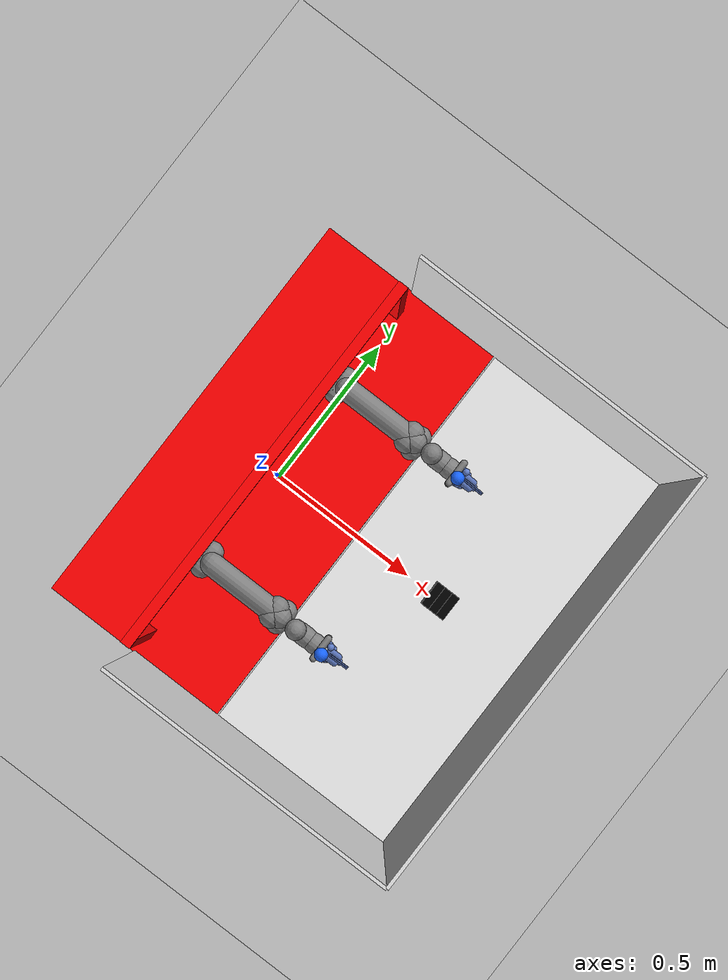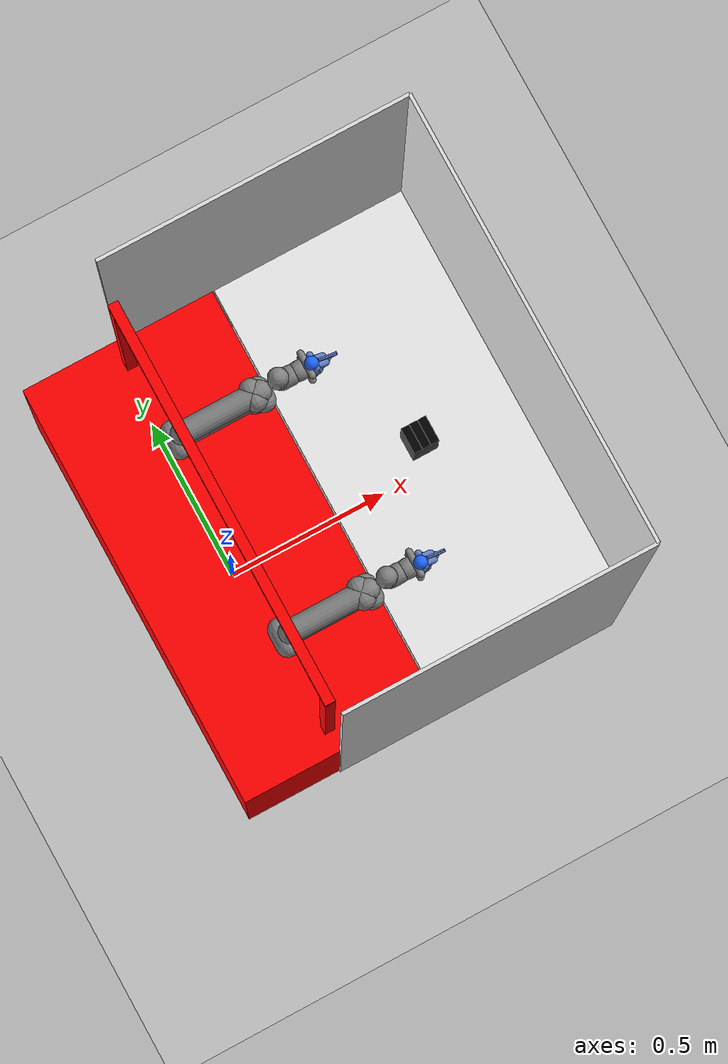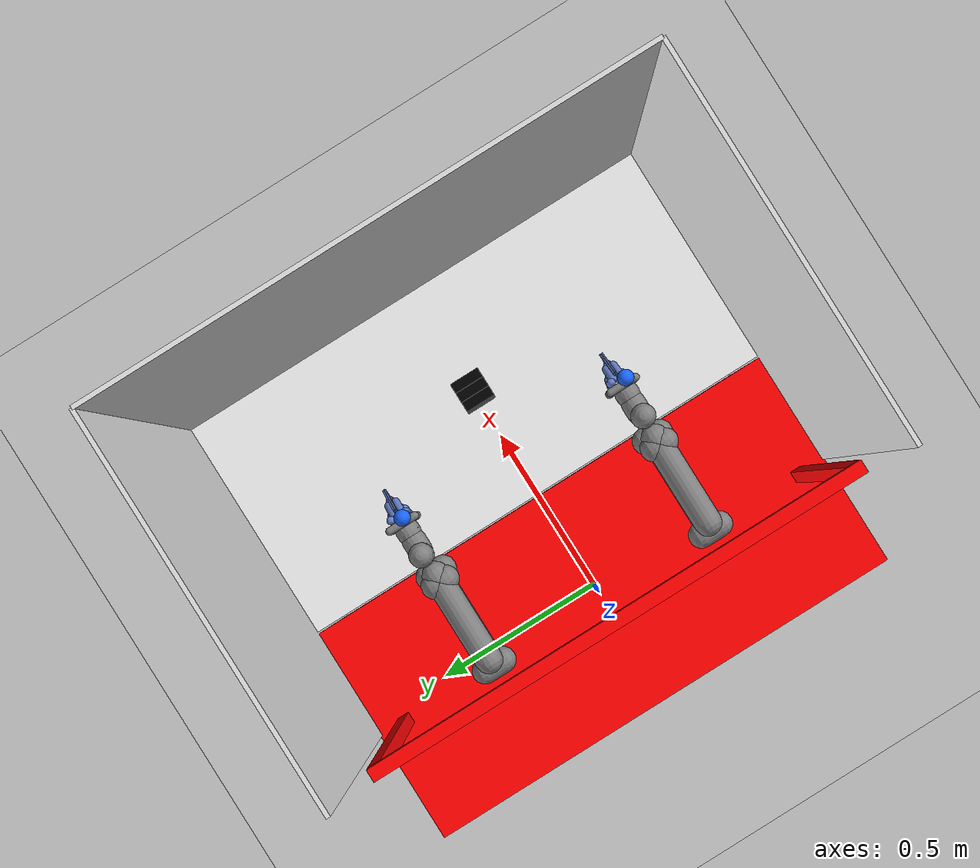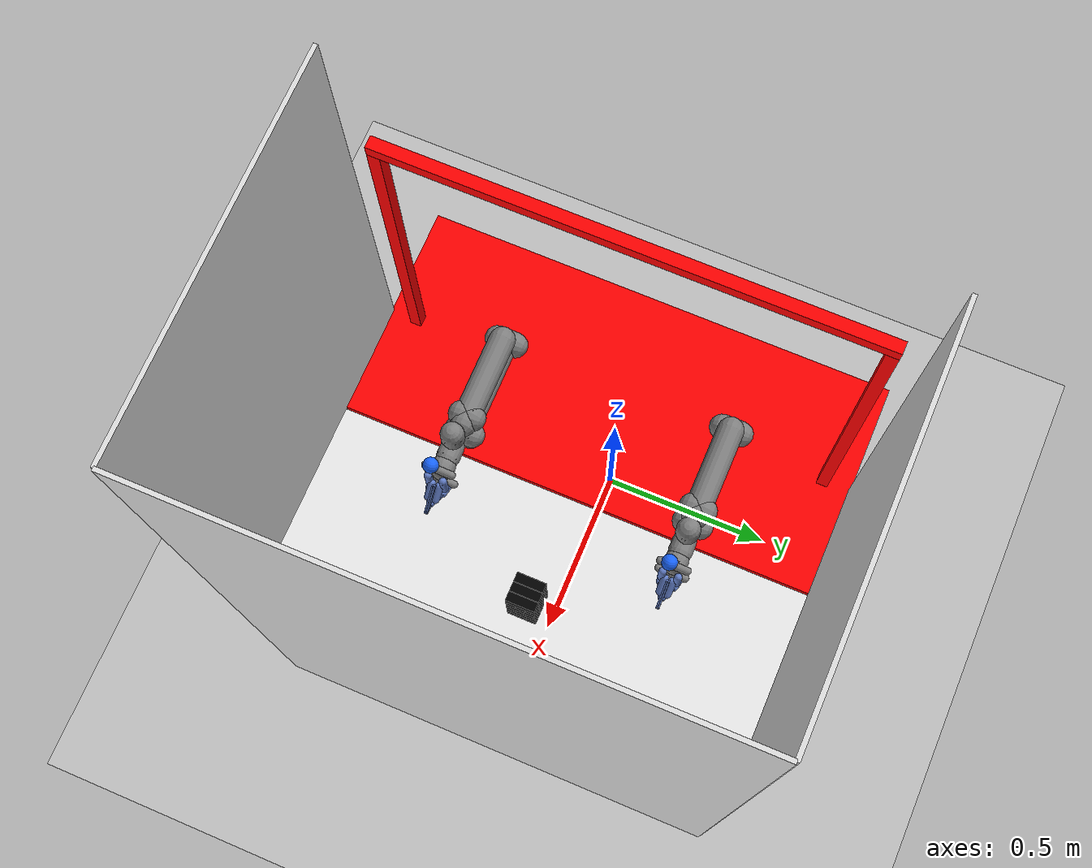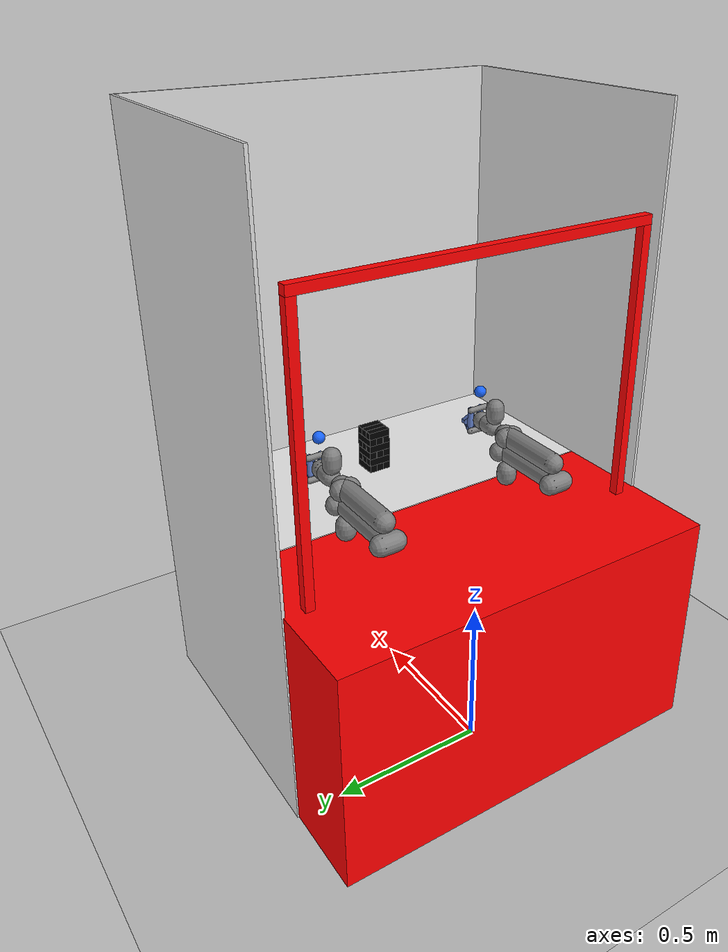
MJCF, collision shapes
<mujoco model="yam_jenga">
  <compiler angle="radian" meshdir="assets" texturedir="assets"/>
  <option integrator="implicitfast"/>

  <visual>
    <global azimuth="120" elevation="-20" offwidth="1920" offheight="1080"/>
    <quality shadowsize="8192" offsamples="16"/>
    <headlight ambient="0.40 0.40 0.40" diffuse="0.0 0.0 0.0" specular="0 0 0"/>
    <rgba haze="1.0 1.0 1.0 1"/>
  </visual>

  <default>
    <default class="yam">
      <position inheritrange="1"/>
      <joint frictionloss="0.1" axis="0 0 1"/>
      <default class="dm4340">
        <joint armature="0.032"/>
        <position kp="40" kv="2.5" forcerange="-28 28"/>
      </default>
      <default class="dm4310">
        <joint armature="0.0018"/>
        <position kp="10" kv="1" forcerange="-10 10"/>
      </default>
      <default class="visual">
        <geom type="mesh" contype="0" conaffinity="0" density="0" group="2" material="black"/>
      </default>
      <default class="collision">
        <geom group="3" type="capsule" friction="2.0 0.1 0.01" condim="6"/>
        <default class="sphere_collision">
          <geom size="0.0006 0 0" type="sphere" rgba="1 0 0 1" friction="4.0 0.1 0.01" condim="6" solimp="0.998 0.998 0.001" solref="0.004 1" priority="2"/>
        </default>
      </default>
      <default class="finger">
        <joint type="slide" armature="0.1" frictionloss="0.1"/>
        <position ctrlrange="0.0 0.0495" kp="400" kv="14" inheritrange="0"/>
      </default>
    </default>
    <default class="jenga_block">
      <geom type="mesh" contype="0" conaffinity="0" condim="6" density="0" group="2" priority="1"/>
    </default>
    <default class="jenga_col">
      <geom type="box" condim="3" friction="0.4 0.005 0.001" solref="0.002 1" solimp="0.999 0.999 0.001" priority="1" group="3" rgba="0 0 0 0"/>
    </default>
  </default>

  <asset>
    <material name="black" rgba="0.30 0.30 0.30 1"/>
    <material name="white" rgba="0.9 0.9 0.9 1"/>
    <texture name="jenga_tex" type="2d" file="jenga/blinn1.png"/>
    <material name="jenga_mat" texture="jenga_tex" specular="0.3" shininess="0.3"/>

    <!-- Yam arm meshes -->
    <mesh file="i2rt_yam/assets/model2.stl"/>
    <mesh file="i2rt_yam/assets/model2__2.stl"/>
    <mesh file="i2rt_yam/assets/model2__3.stl"/>
    <mesh file="i2rt_yam/assets/model2__4.stl"/>
    <mesh file="i2rt_yam/assets/model2__5.stl"/>
    <mesh file="i2rt_yam/assets/model2__6.stl"/>
    <mesh file="i2rt_yam/assets/model2__7.stl"/>
    <mesh file="i2rt_yam/assets/model2__8.stl"/>
    <mesh file="i2rt_yam/assets/model2__9.stl"/>
    <mesh file="i2rt_yam/assets/model2__10.stl"/>
    <mesh file="i2rt_yam/assets/model2__11.stl"/>
    <mesh file="i2rt_yam/assets/model2__12.stl"/>
    <mesh file="i2rt_yam/assets/model2__13.stl"/>
    <mesh file="i2rt_yam/assets/model2__14.stl"/>
    <mesh file="i2rt_yam/assets/model2__15.stl"/>
    <mesh file="i2rt_yam/assets/model2__16.stl"/>
    <mesh file="i2rt_yam/assets/model2__17.stl"/>
    <mesh name="base_visual_gate" file="i2rt_yam/assets/base_visual_gate.stl"/>
    <mesh name="camera_d405" file="i2rt_yam/assets/d405.stl"/>

    <!-- Jenga block mesh (2.5cm x 2.5cm x 7.7cm at this scale) -->
    <mesh name="jenga_block" file="jenga/jenga_block.obj" scale="0.025 0.025 0.025"/>
    <mesh name="jenga_block_col" file="jenga/jenga_block_collision.obj" scale="0.025 0.025 0.025"/>

    <texture type="skybox" builtin="gradient" rgb1="1.0 1.0 1.0" rgb2="0.98 0.98 0.98" width="512" height="3072"/>
    <texture type="2d" name="groundplane" builtin="checker" mark="edge"
      rgb1="0.55 0.55 0.55" rgb2="0.50 0.50 0.50" markrgb="0.6 0.6 0.6" width="300" height="300"/>
    <material name="groundplane" texture="groundplane" texuniform="true" texrepeat="5 5" reflectance="0.2"/>
  </asset>

  <worldbody>
    <light pos="0 0 1.5" dir="0 0 -1" directional="true" diffuse="0.30 0.30 0.30" specular="0.05 0.05 0.05"/>
    <geom name="floor" size="0 0 0.05" type="plane" contype="0" conaffinity="0" rgba="0.75 0.75 0.75 1"/>
    <geom name="floor_collision" size="0 0 0.05" type="plane" group="3" rgba="0 0 0 0"/>

    <geom type="mesh" contype="0" conaffinity="0" group="2" density="0" rgba="0.60 0.62 0.68 1" mesh="base_visual_gate"/>
    <geom size="0.2975 0.65 0.375" pos="0 0 0.375" type="box" group="3" rgba="1 0 0 0.0"/>

    <body name="gate_collision" pos="0 0 0.75">
      <geom size="0.015 0.015 0.45" pos="0 0.575 0.45" type="box" group="3" rgba="1 0 0 0.0"/>
      <geom size="0.015 0.015 0.45" pos="0 -0.575 0.45" type="box" group="3" rgba="1 0 0 0.0"/>
      <geom size="0.015 0.015 0.59" pos="0 0 0.915" quat="0.707107 0.707107 0 0" type="box" group="3" rgba="1 0 0 0.0"/>
      <body name="top_bar_center" pos="0 0 0.915">
        <body name="top_camera_d405" pos="0.08600512 -0.009 0.03932053" quat="0.183012 0.683013 0.683013 0.183012">
          <geom type="mesh" contype="0" conaffinity="0" group="2" density="0.001" mass="0.001" rgba="0.22 0.22 0.24 1" mesh="camera_d405"/>
          <body name="top_camera_frame" pos="0.009 0 0" quat="0 0 0 1">
            <camera name="top" pos="0 0 0" quat="0 1 0 0" fovy="58"/>
          </body>
        </body>
      </body>
    </body>

    <!-- Enclosure walls -->
    <geom name="back_wall" type="box" size="0.005 0.65 1.0" pos="0.9 0 1.0" group="2" contype="0" conaffinity="0" rgba="0.88 0.88 0.88 1"/>
    <geom name="back_wall_collision" type="box" size="0.005 0.65 1.0" pos="0.9 0 1.0" group="3" rgba="0 0 0 0"/>
    <geom name="left_wall" type="box" size="0.45 0.005 1.0" pos="0.45 0.65 1.0" group="2" contype="0" conaffinity="0" rgba="0.88 0.88 0.88 1"/>
    <geom name="left_wall_collision" type="box" size="0.45 0.005 1.0" pos="0.45 0.65 1.0" group="3" rgba="0 0 0 0"/>
    <geom name="right_wall" type="box" size="0.45 0.005 1.0" pos="0.45 -0.65 1.0" group="2" contype="0" conaffinity="0" rgba="0.88 0.88 0.88 1"/>
    <geom name="right_wall_collision" type="box" size="0.45 0.005 1.0" pos="0.45 -0.65 1.0" group="3" rgba="0 0 0 0"/>

    <!-- Overhead camera -->
    <body name="overhead_camera" pos="0.55 0.0 1.6">
      <camera name="overhead" pos="0 0 0" quat="0.707 0 0 -0.707" fovy="60"/>
    </body>

    <body name="left_side_camera" pos="0.5 0.55 1.05" euler="-1.3 0 3.14159">
      <camera name="left_side" pos="0 0 0" fovy="70"/>
    </body>
    <body name="right_side_camera" pos="0.5 -0.55 1.05" euler="1.3 0 0">
      <camera name="right_side" pos="0 0 0" fovy="70"/>
    </body>

    <body name="play_table">
      <geom size="0.2975 0.65 0.005" pos="0.6 0 0.745" type="box" group="2" contype="0" conaffinity="0" rgba="0.92 0.92 0.92 1"/>
    </body>
    <geom name="table_plane" type="plane" size="0.2975 0.65 0.01" pos="0.6 0 0.75" rgba="0 0 0 0" group="3"/>

    <!-- ==================== JENGA BLOCKS ==================== -->
    <!-- 6-layer tower (3 blocks per layer, alternating 90deg), block ~2.5x2.5x7.7cm -->
    <!-- Mesh long axis is local Z. Rotated to lie flat on table. -->
    <!-- Odd layers: long axis along X, spread along Y. quat rotates local Z→world X -->
    <!-- Even layers: long axis along Y, spread along X. quat rotates local Z→world -Y -->

    <!-- Layer 1: blocks along X, spread along Y -->
    <body name="jenga_1" pos="0.60 -0.026 0.7625" quat="0.707107 0 0.707107 0">
      <freejoint name="jenga_1_jnt"/>
      <geom name="jenga_1_vis" mesh="jenga_block" material="jenga_mat" class="jenga_block"/>
      <geom name="jenga_1_col" size="0.0125 0.0125 0.0386" mass="0.008" class="jenga_col"/>
    </body>
    <body name="jenga_2" pos="0.60 0.0 0.7625" quat="0.707107 0 0.707107 0">
      <freejoint name="jenga_2_jnt"/>
      <geom name="jenga_2_vis" mesh="jenga_block" material="jenga_mat" class="jenga_block"/>
      <geom name="jenga_2_col" size="0.0125 0.0125 0.0386" mass="0.008" class="jenga_col"/>
    </body>
    <body name="jenga_3" pos="0.60 0.026 0.7625" quat="0.707107 0 0.707107 0">
      <freejoint name="jenga_3_jnt"/>
      <geom name="jenga_3_vis" mesh="jenga_block" material="jenga_mat" class="jenga_block"/>
      <geom name="jenga_3_col" size="0.0125 0.0125 0.0386" mass="0.008" class="jenga_col"/>
    </body>

    <!-- Layer 2: blocks along Y, spread along X -->
    <body name="jenga_4" pos="0.574 0.0 0.7875" quat="0.707107 0.707107 0 0">
      <freejoint name="jenga_4_jnt"/>
      <geom name="jenga_4_vis" mesh="jenga_block" material="jenga_mat" class="jenga_block"/>
      <geom name="jenga_4_col" size="0.0125 0.0125 0.0386" mass="0.008" class="jenga_col"/>
    </body>
    <body name="jenga_5" pos="0.60 0.0 0.7875" quat="0.707107 0.707107 0 0">
      <freejoint name="jenga_5_jnt"/>
      <geom name="jenga_5_vis" mesh="jenga_block" material="jenga_mat" class="jenga_block"/>
      <geom name="jenga_5_col" size="0.0125 0.0125 0.0386" mass="0.008" class="jenga_col"/>
    </body>
    <body name="jenga_6" pos="0.626 0.0 0.7875" quat="0.707107 0.707107 0 0">
      <freejoint name="jenga_6_jnt"/>
      <geom name="jenga_6_vis" mesh="jenga_block" material="jenga_mat" class="jenga_block"/>
      <geom name="jenga_6_col" size="0.0125 0.0125 0.0386" mass="0.008" class="jenga_col"/>
    </body>

    <!-- Layer 3: blocks along X, spread along Y -->
    <body name="jenga_7" pos="0.60 -0.026 0.8125" quat="0.707107 0 0.707107 0">
      <freejoint name="jenga_7_jnt"/>
      <geom name="jenga_7_vis" mesh="jenga_block" material="jenga_mat" class="jenga_block"/>
      <geom name="jenga_7_col" size="0.0125 0.0125 0.0386" mass="0.008" class="jenga_col"/>
    </body>
    <body name="jenga_8" pos="0.60 0.0 0.8125" quat="0.707107 0 0.707107 0">
      <freejoint name="jenga_8_jnt"/>
      <geom name="jenga_8_vis" mesh="jenga_block" material="jenga_mat" class="jenga_block"/>
      <geom name="jenga_8_col" size="0.0125 0.0125 0.0386" mass="0.008" class="jenga_col"/>
    </body>
    <body name="jenga_9" pos="0.60 0.026 0.8125" quat="0.707107 0 0.707107 0">
      <freejoint name="jenga_9_jnt"/>
      <geom name="jenga_9_vis" mesh="jenga_block" material="jenga_mat" class="jenga_block"/>
      <geom name="jenga_9_col" size="0.0125 0.0125 0.0386" mass="0.008" class="jenga_col"/>
    </body>

    <!-- Layer 4: blocks along Y, spread along X -->
    <body name="jenga_10" pos="0.574 0.0 0.8375" quat="0.707107 0.707107 0 0">
      <freejoint name="jenga_10_jnt"/>
      <geom name="jenga_10_vis" mesh="jenga_block" material="jenga_mat" class="jenga_block"/>
      <geom name="jenga_10_col" size="0.0125 0.0125 0.0386" mass="0.008" class="jenga_col"/>
    </body>
    <body name="jenga_11" pos="0.60 0.0 0.8375" quat="0.707107 0.707107 0 0">
      <freejoint name="jenga_11_jnt"/>
      <geom name="jenga_11_vis" mesh="jenga_block" material="jenga_mat" class="jenga_block"/>
      <geom name="jenga_11_col" size="0.0125 0.0125 0.0386" mass="0.008" class="jenga_col"/>
    </body>
    <body name="jenga_12" pos="0.626 0.0 0.8375" quat="0.707107 0.707107 0 0">
      <freejoint name="jenga_12_jnt"/>
      <geom name="jenga_12_vis" mesh="jenga_block" material="jenga_mat" class="jenga_block"/>
      <geom name="jenga_12_col" size="0.0125 0.0125 0.0386" mass="0.008" class="jenga_col"/>
    </body>

    <!-- Layer 5: blocks along X, spread along Y -->
    <body name="jenga_13" pos="0.60 -0.026 0.8625" quat="0.707107 0 0.707107 0">
      <freejoint name="jenga_13_jnt"/>
      <geom name="jenga_13_vis" mesh="jenga_block" material="jenga_mat" class="jenga_block"/>
      <geom name="jenga_13_col" size="0.0125 0.0125 0.0386" mass="0.008" class="jenga_col"/>
    </body>
    <body name="jenga_14" pos="0.60 0.0 0.8625" quat="0.707107 0 0.707107 0">
      <freejoint name="jenga_14_jnt"/>
      <geom name="jenga_14_vis" mesh="jenga_block" material="jenga_mat" class="jenga_block"/>
      <geom name="jenga_14_col" size="0.0125 0.0125 0.0386" mass="0.008" class="jenga_col"/>
    </body>
    <body name="jenga_15" pos="0.60 0.026 0.8625" quat="0.707107 0 0.707107 0">
      <freejoint name="jenga_15_jnt"/>
      <geom name="jenga_15_vis" mesh="jenga_block" material="jenga_mat" class="jenga_block"/>
      <geom name="jenga_15_col" size="0.0125 0.0125 0.0386" mass="0.008" class="jenga_col"/>
    </body>

    <!-- Layer 6: blocks along Y, spread along X -->
    <body name="jenga_16" pos="0.574 0.0 0.8875" quat="0.707107 0.707107 0 0">
      <freejoint name="jenga_16_jnt"/>
      <geom name="jenga_16_vis" mesh="jenga_block" material="jenga_mat" class="jenga_block"/>
      <geom name="jenga_16_col" size="0.0125 0.0125 0.0386" mass="0.008" class="jenga_col"/>
    </body>
    <body name="jenga_17" pos="0.60 0.0 0.8875" quat="0.707107 0.707107 0 0">
      <freejoint name="jenga_17_jnt"/>
      <geom name="jenga_17_vis" mesh="jenga_block" material="jenga_mat" class="jenga_block"/>
      <geom name="jenga_17_col" size="0.0125 0.0125 0.0386" mass="0.008" class="jenga_col"/>
    </body>
    <body name="jenga_18" pos="0.626 0.0 0.8875" quat="0.707107 0.707107 0 0">
      <freejoint name="jenga_18_jnt"/>
      <geom name="jenga_18_vis" mesh="jenga_block" material="jenga_mat" class="jenga_block"/>
      <geom name="jenga_18_col" size="0.0125 0.0125 0.0386" mass="0.008" class="jenga_col"/>
    </body>

    <!-- ==================== LEFT ARM ==================== -->
    <body name="left_arm" pos="0.2525 0.31 0.76" childclass="yam">
      <geom class="visual" pos="0 0 -0.0006" quat="1 0 0 1" mesh="model2"/>
      <geom class="collision" size="0.033 0.01" pos="0.0 0.0 0.026" quat="1 0 0 0"/>
      <body name="left_link_1" pos="0 0 0.0631" quat="1 0 0 1">
        <inertial pos="-0.00192861 -0.00795735 0.0208176" quat="0.297851 0.642634 0.360045 0.607185" mass="0.12415"
          diaginertia="0.000180751 0.000145532 5.89179e-05"/>
        <joint name="left_joint1" range="-2.61799 3.05433" class="dm4340"/>
        <geom class="visual" pos="5.26159e-07 2.34355e-07 -0.0632" quat="1 0 0 0" mesh="model2__2"/>
        <body name="left_link_2" pos="2.5e-05 -0.02 0.0409" quat="1 1 1 1" gravcomp="1">
          <inertial pos="0.132008 2.10599e-06 0.000293073" quat="1 1 1 1" mass="1.24434"
            diaginertia="0.0121902 0.0121318 0.000683304"/>
          <joint name="left_joint2" range="0 3.66519" class="dm4340"/>
          <geom class="visual" pos="0.0199992 -0.1041 -2.44738e-05" quat="1 -1 -1 -1" mesh="model2__3"/>
          <geom class="visual" pos="0.0199992 -0.1041 -2.44738e-05" quat="1 -1 -1 -1" mesh="model2__4"/>
          <geom class="visual" pos="0.0199992 -0.1041 -2.44738e-05" quat="1 -1 -1 -1" mesh="model2__5" material="white"/>
          <geom class="collision" size="0.032 0.11" pos="0.13 0 0" quat="1 0 1 0"/>
          <geom class="collision" size="0.033 0.02" pos="0 0.0 0" quat="1 0 0 0"/>
          <geom class="collision" size="0.033 0.025" pos="0.265 0 0" quat="1 0 0 0"/>
          <body name="left_link_3" pos="0.264 0 0" quat="0 1 0 0" gravcomp="1">
            <inertial pos="-0.121816 -0.054846 -0.000111108" quat="1 1 1 1" mass="0.853698"
              diaginertia="0.00699732 0.00696112 0.000788244"/>
            <joint name="left_joint3" range="0 3.66519" class="dm4340"/>
            <geom class="visual" pos="-0.244001 0.104101 2.44738e-05" quat="1 1 1 -1" mesh="model2__6"/>
            <geom class="visual" pos="-0.244001 0.104101 2.44738e-05" quat="1 1 1 -1" mesh="model2__7"/>
            <geom class="visual" pos="-0.244001 0.104101 2.44738e-05" quat="1 1 1 -1" mesh="model2__8" material="white"/>
            <geom class="visual" pos="-0.244001 0.104101 2.44738e-05" quat="1 1 1 -1" mesh="model2__9"/>
            <geom class="collision" size="0.034 0.12" pos="-0.14 -0.06 0.0" quat="1 0 1 0"/>
            <geom class="collision" size="0.034 0.015" pos="-0.24 -0.06 0.0" quat="1 0 0 0"/>
            <body name="left_link_4" pos="-0.245 -0.06 0" quat="1 0 0 0" gravcomp="1">
              <inertial pos="-0.0769778 -0.0527104 0.000154878" quat="0.667 0.667 -0.236 -0.236" mass="0.463511"
                diaginertia="0.000791532 0.000744733 0.000282116"/>
              <joint name="left_joint4" range="-1.5708 1.5708" class="dm4310"/>
              <geom class="visual" pos="0.00100023 0.164101 2.44738e-05" quat="1 1 1 -1" mesh="model2__10"/>
              <geom class="collision" size="0.03 0.015" pos="-0.073 -0.06 0.0" quat="1 1 0 0"/>
              <body name="left_link_5" pos="-0.074 -0.0395 2.5e-05" quat="1 -1 1 1" gravcomp="1">
                <inertial pos="3.64861e-05 0.00025665 0.0353526" quat="1 0 0 0" mass="0.350962"
                  diaginertia="0.000197802 0.0001775 0.000147402"/>
                <joint name="left_joint5" range="-1.5708 1.5708" class="dm4310"/>
                <geom class="visual" pos="0 -0.0749971 0.203601" quat="1.32679e-06 1 0 0" mesh="model2__11"/>
                <geom class="collision" size="0.030 0.015" pos="0 0.025 0.0395" quat="1 1 0 0"/>
                <body name="left_link_6" pos="0 0.0353 0.0395" quat="1 -1 0 0" gravcomp="1">
                  <inertial pos="-0.000217767 7.37059e-05 0.0270545" quat="1 1 0 0" mass="0.367476"
                    diaginertia="0.000265958 0.000242686 0.000227409"/>
                  <joint name="left_joint6" range="-2.0944 2.0944" class="dm4310"/>
                  <geom class="visual" pos="0 -0.164101 -0.110597" quat="1 -1 0 0" mesh="model2__12"/>
                  <geom class="visual" pos="0 -0.164101 -0.110597" quat="1 -1 0 0" mesh="model2__13"/>
                  <geom class="collision" size="0.01 0.035" pos="0 0.039 0.052" quat="1 0 1 0"/>
                  <geom class="collision" size="0.030 0.005" pos="0 0.0 0.03" quat="1 0 0 1"/>
                  <geom class="collision" size="0.01 0.035" pos="0 -0.039 0.052" quat="1 0 1 0"/>
                  <site name="left_tcp_site" pos="0 0 0" quat="1 0 0 -1" size="0.005" rgba="1 0 0 1" group="4"/>
                  <site name="left_grasp_site" pos="0 0 0.1347" quat="1 0 0 -1" size="0.005" rgba="0 1 0 1" group="4"/>
                  <body name="left_camera_d405" pos="-0.0107 0.095 0.062" quat="0.906 0.423 0 0">
                    <geom type="mesh" contype="0" conaffinity="0" group="2" density="0.001" mass="0.001"
                      rgba="0.22 0.22 0.24 1" mesh="camera_d405"/>
                    <geom name="left_cam_col" type="sphere" size="0.02" pos="0 0 0"
                      group="3" rgba="0.1 0.4 1 0.3" mass="0.001"/>
                    <body name="left_camera_frame" pos="0.009 0 0" quat="0 0 0 1">
                      <camera name="left" pos="0 0 0" quat="0 1 0 0" fovy="58"/>
                    </body>
                  </body>
                  <body name="left_link_left_finger" pos="-0.037 0.0392 0.0605" quat="1 0 1 0" gravcomp="1">
                    <inertial pos="-0.0192995 -0.0365902 0.039774" quat="0.757351 0.568898 -0.3199 0.0" mass="0.118"
                      diaginertia="0.000159084 0.000154909 4.63655e-05"/>
                    <joint class="finger" name="left_left_finger" range="-0.00205 0.0475"/>
                    <geom class="visual" pos="0.171097 -0.203301 0.037" quat="1 -1 -1 -1" mesh="model2__14"/>
                    <geom class="visual" pos="0.171097 -0.203301 0.037" quat="1 -1 -1 -1" mesh="model2__15"/>
                    <body name="left_lf_rot" quat="1 -1 -1 1" pos="0.0 -0.0392 0.037" gravcomp="1">
                      <geom class="collision" size="0.01 0.03" pos="0.0 -0.02 0.012" quat="1 0 1 0" rgba="0.381493 0.492734 0.780446 1"/>
                      <geom class="collision" size="0.01 0.02" pos="-0.02 -0.01 0.032" quat="1 0 2.5 0" rgba="0.381493 0.492734 0.780446 1"/>
                      <body name="left_lf_down" quat="1 0 0 0" pos="-0.044 0.0 0.0" gravcomp="1">
                        <geom class="collision" size="0.01 0.01" pos="0.0 -0.020 0.012" quat="1 -0.1 0 0" rgba="0.381493 0.492734 0.780446 1"/>
                        <geom class="collision" size="0.003 0.022" pos="0.005 -0.014 0.04" quat="1 -0.2 0 0" rgba="0.381493 0.492734 0.780446 1"/>
                        <geom class="collision" size="0.003 0.022" pos="-0.005 -0.014 0.04" quat="1 -0.2 0 0" rgba="0.381493 0.492734 0.780446 1"/>
                        <geom class="collision" type="box" size="0.006 0.002 0.04" friction="4.0 0.1 0.01" priority="2" solref="0.004 1" solimp="0.998 0.998 0.001" pos="0 -0.0024 0.046" quat="1 0 0 0" rgba="0.381493 0.492734 0.780446 1"/>
                        <geom class="collision" type="box" size="0.006 0.002 0.039" friction="4.0 0.1 0.01" priority="2" solref="0.004 1" solimp="0.998 0.998 0.001" pos="0.027 -0.0024 0.053" quat="1 0 2.5 0" rgba="0.381493 0.492734 0.780446 1"/>
                        <geom class="sphere_collision" pos="0.003  -0.0004 0.078"/>
                        <geom class="sphere_collision" pos="-0.003 -0.0004 0.078"/>
                        <geom class="sphere_collision" pos="0.003  -0.0004 0.07"/>
                        <geom class="sphere_collision" pos="-0.003 -0.0004 0.07"/>
                        <geom class="sphere_collision" pos="0.003  -0.0004 0.06"/>
                        <geom class="sphere_collision" pos="-0.003 -0.0004 0.06"/>
                      </body>
                    </body>
                  </body>
                  <body name="left_link_right_finger" pos="0.037 -0.0392 0.0605" quat="1 0 1 0" gravcomp="1">
                    <inertial pos="-0.0192995 0.0365902 -0.039774" quat="-0.757351 0.568898 -0.3199 0" mass="0.118"
                      diaginertia="0.000159084 0.000154909 4.63655e-05"/>
                    <joint class="finger" name="left_right_finger" range="-0.0475 0.00205"/>
                    <geom class="visual" pos="0.171097 -0.124901 -0.037" quat="1 -1 -1 -1" mesh="model2__16"/>
                    <geom class="visual" pos="0.171097 -0.124901 -0.037" quat="1 -1 -1 -1" mesh="model2__17"/>
                    <body name="left_rf_rot" quat="1 1 -1 -1" pos="0.0 0.0392 -0.037" gravcomp="1">
                      <geom class="collision" size="0.01 0.03" pos="0.0 -0.02 0.012" quat="1 0 1 0" rgba="0.381493 0.492734 0.780446 1"/>
                      <geom class="collision" size="0.01 0.02" pos="0.02 -0.01 0.032" quat="1 0 -2.5 0" rgba="0.381493 0.492734 0.780446 1"/>
                      <body name="left_rf_down" quat="1 0 0 0" pos="0.044 0.0 0.0" gravcomp="1">
                        <geom class="collision" size="0.01 0.01" pos="0.0 -0.020 0.012" quat="1 -0.1 0 0" rgba="0.381493 0.492734 0.780446 1"/>
                        <geom class="collision" size="0.003 0.022" pos="0.005 -0.014 0.04" quat="1 -0.2 0 0" rgba="0.381493 0.492734 0.780446 1"/>
                        <geom class="collision" size="0.003 0.022" pos="-0.005 -0.014 0.04" quat="1 -0.2 0 0" rgba="0.381493 0.492734 0.780446 1"/>
                        <geom class="collision" type="box" size="0.006 0.002 0.04" friction="4.0 0.1 0.01" priority="2" solref="0.004 1" solimp="0.998 0.998 0.001" pos="0 -0.0024 0.046" quat="1 0 0 0" rgba="0.381493 0.492734 0.780446 1"/>
                        <geom class="collision" type="box" size="0.006 0.002 0.039" friction="4.0 0.1 0.01" priority="2" solref="0.004 1" solimp="0.998 0.998 0.001" pos="-0.027 -0.0024 0.053" quat="1 0 -2.5 0" rgba="0.381493 0.492734 0.780446 1"/>
                        <geom class="sphere_collision" pos="0.003  -0.0004 0.078"/>
                        <geom class="sphere_collision" pos="-0.003 -0.0004 0.078"/>
                        <geom class="sphere_collision" pos="0.003  -0.0004 0.07"/>
                        <geom class="sphere_collision" pos="-0.003 -0.0004 0.07"/>
                        <geom class="sphere_collision" pos="0.003  -0.0004 0.06"/>
                        <geom class="sphere_collision" pos="-0.003 -0.0004 0.06"/>
                      </body>
                    </body>
                  </body>
                </body>
              </body>
            </body>
          </body>
        </body>
      </body>
    </body>

    <!-- ==================== RIGHT ARM ==================== -->
    <body name="right_arm" pos="0.2525 -0.31 0.76" childclass="yam">
      <geom class="visual" pos="0 0 -0.0006" quat="1 0 0 1" mesh="model2"/>
      <geom class="collision" size="0.033 0.01" pos="0.0 0.0 0.026" quat="1 0 0 0"/>
      <body name="right_link_1" pos="0 0 0.0631" quat="1 0 0 1">
        <inertial pos="-0.00192861 -0.00795735 0.0208176" quat="0.297851 0.642634 0.360045 0.607185" mass="0.12415"
          diaginertia="0.000180751 0.000145532 5.89179e-05"/>
        <joint name="right_joint1" range="-2.61799 3.05433" class="dm4340"/>
        <geom class="visual" pos="5.26159e-07 2.34355e-07 -0.0632" quat="1 0 0 0" mesh="model2__2"/>
        <body name="right_link_2" pos="2.5e-05 -0.02 0.0409" quat="1 1 1 1" gravcomp="1">
          <inertial pos="0.132008 2.10599e-06 0.000293073" quat="1 1 1 1" mass="1.24434"
            diaginertia="0.0121902 0.0121318 0.000683304"/>
          <joint name="right_joint2" range="0 3.66519" class="dm4340"/>
          <geom class="visual" pos="0.0199992 -0.1041 -2.44738e-05" quat="1 -1 -1 -1" mesh="model2__3"/>
          <geom class="visual" pos="0.0199992 -0.1041 -2.44738e-05" quat="1 -1 -1 -1" mesh="model2__4"/>
          <geom class="visual" pos="0.0199992 -0.1041 -2.44738e-05" quat="1 -1 -1 -1" mesh="model2__5" material="white"/>
          <geom class="collision" size="0.032 0.11" pos="0.13 0 0" quat="1 0 1 0"/>
          <geom class="collision" size="0.033 0.02" pos="0 0.0 0" quat="1 0 0 0"/>
          <geom class="collision" size="0.033 0.025" pos="0.265 0 0" quat="1 0 0 0"/>
          <body name="right_link_3" pos="0.264 0 0" quat="0 1 0 0" gravcomp="1">
            <inertial pos="-0.121816 -0.054846 -0.000111108" quat="1 1 1 1" mass="0.853698"
              diaginertia="0.00699732 0.00696112 0.000788244"/>
            <joint name="right_joint3" range="0 3.66519" class="dm4340"/>
            <geom class="visual" pos="-0.244001 0.104101 2.44738e-05" quat="1 1 1 -1" mesh="model2__6"/>
            <geom class="visual" pos="-0.244001 0.104101 2.44738e-05" quat="1 1 1 -1" mesh="model2__7"/>
            <geom class="visual" pos="-0.244001 0.104101 2.44738e-05" quat="1 1 1 -1" mesh="model2__8" material="white"/>
            <geom class="visual" pos="-0.244001 0.104101 2.44738e-05" quat="1 1 1 -1" mesh="model2__9"/>
            <geom class="collision" size="0.034 0.12" pos="-0.14 -0.06 0.0" quat="1 0 1 0"/>
            <geom class="collision" size="0.034 0.015" pos="-0.24 -0.06 0.0" quat="1 0 0 0"/>
            <body name="right_link_4" pos="-0.245 -0.06 0" quat="1 0 0 0" gravcomp="1">
              <inertial pos="-0.0769778 -0.0527104 0.000154878" quat="0.667 0.667 -0.236 -0.236" mass="0.463511"
                diaginertia="0.000791532 0.000744733 0.000282116"/>
              <joint name="right_joint4" range="-1.5708 1.5708" class="dm4310"/>
              <geom class="visual" pos="0.00100023 0.164101 2.44738e-05" quat="1 1 1 -1" mesh="model2__10"/>
              <geom class="collision" size="0.03 0.015" pos="-0.073 -0.06 0.0" quat="1 1 0 0"/>
              <body name="right_link_5" pos="-0.074 -0.0395 2.5e-05" quat="1 -1 1 1" gravcomp="1">
                <inertial pos="3.64861e-05 0.00025665 0.0353526" quat="1 0 0 0" mass="0.350962"
                  diaginertia="0.000197802 0.0001775 0.000147402"/>
                <joint name="right_joint5" range="-1.5708 1.5708" class="dm4310"/>
                <geom class="visual" pos="0 -0.0749971 0.203601" quat="1.32679e-06 1 0 0" mesh="model2__11"/>
                <geom class="collision" size="0.030 0.015" pos="0 0.025 0.0395" quat="1 1 0 0"/>
                <body name="right_link_6" pos="0 0.0353 0.0395" quat="1 -1 0 0" gravcomp="1">
                  <inertial pos="-0.000217767 7.37059e-05 0.0270545" quat="1 1 0 0" mass="0.367476"
                    diaginertia="0.000265958 0.000242686 0.000227409"/>
                  <joint name="right_joint6" range="-2.0944 2.0944" class="dm4310"/>
                  <geom class="visual" pos="0 -0.164101 -0.110597" quat="1 -1 0 0" mesh="model2__12"/>
                  <geom class="visual" pos="0 -0.164101 -0.110597" quat="1 -1 0 0" mesh="model2__13"/>
                  <geom class="collision" size="0.01 0.035" pos="0 0.039 0.052" quat="1 0 1 0"/>
                  <geom class="collision" size="0.030 0.005" pos="0 0.0 0.03" quat="1 0 0 1"/>
                  <geom class="collision" size="0.01 0.035" pos="0 -0.039 0.052" quat="1 0 1 0"/>
                  <site name="right_tcp_site" pos="0 0 0" quat="1 0 0 -1" size="0.005" rgba="1 0 0 1" group="4"/>
                  <site name="right_grasp_site" pos="0 0 0.1347" quat="1 0 0 -1" size="0.005" rgba="0 1 0 1" group="4"/>
                  <body name="right_camera_d405" pos="-0.0107 0.095 0.062" quat="0.906 0.423 0 0">
                    <geom type="mesh" contype="0" conaffinity="0" group="2" density="0.001" mass="0.001"
                      rgba="0.22 0.22 0.24 1" mesh="camera_d405"/>
                    <geom name="right_cam_col" type="sphere" size="0.02" pos="0 0 0"
                      group="3" rgba="0.1 0.4 1 0.3" mass="0.001"/>
                    <body name="right_camera_frame" pos="0.009 0 0" quat="0 0 0 1">
                      <camera name="right" pos="0 0 0" quat="0 1 0 0" fovy="58"/>
                    </body>
                  </body>
                  <body name="right_link_left_finger" pos="-0.037 0.0392 0.0605" quat="1 0 1 0" gravcomp="1">
                    <inertial pos="-0.0192995 -0.0365902 0.039774" quat="0.757351 0.568898 -0.3199 0.0" mass="0.118"
                      diaginertia="0.000159084 0.000154909 4.63655e-05"/>
                    <joint class="finger" name="right_left_finger" range="-0.00205 0.0475"/>
                    <geom class="visual" pos="0.171097 -0.203301 0.037" quat="1 -1 -1 -1" mesh="model2__14"/>
                    <geom class="visual" pos="0.171097 -0.203301 0.037" quat="1 -1 -1 -1" mesh="model2__15"/>
                    <body name="right_lf_rot" quat="1 -1 -1 1" pos="0.0 -0.0392 0.037" gravcomp="1">
                      <geom class="collision" size="0.01 0.03" pos="0.0 -0.02 0.012" quat="1 0 1 0" rgba="0.381493 0.492734 0.780446 1"/>
                      <geom class="collision" size="0.01 0.02" pos="-0.02 -0.01 0.032" quat="1 0 2.5 0" rgba="0.381493 0.492734 0.780446 1"/>
                      <body name="right_lf_down" quat="1 0 0 0" pos="-0.044 0.0 0.0" gravcomp="1">
                        <geom class="collision" size="0.01 0.01" pos="0.0 -0.020 0.012" quat="1 -0.1 0 0" rgba="0.381493 0.492734 0.780446 1"/>
                        <geom class="collision" size="0.003 0.022" pos="0.005 -0.014 0.04" quat="1 -0.2 0 0" rgba="0.381493 0.492734 0.780446 1"/>
                        <geom class="collision" size="0.003 0.022" pos="-0.005 -0.014 0.04" quat="1 -0.2 0 0" rgba="0.381493 0.492734 0.780446 1"/>
                        <geom class="collision" type="box" size="0.006 0.002 0.04" friction="4.0 0.1 0.01" priority="2" solref="0.004 1" solimp="0.998 0.998 0.001" pos="0 -0.0024 0.046" quat="1 0 0 0" rgba="0.381493 0.492734 0.780446 1"/>
                        <geom class="collision" type="box" size="0.006 0.002 0.039" friction="4.0 0.1 0.01" priority="2" solref="0.004 1" solimp="0.998 0.998 0.001" pos="0.027 -0.0024 0.053" quat="1 0 2.5 0" rgba="0.381493 0.492734 0.780446 1"/>
                        <geom class="sphere_collision" pos="0.003  -0.0004 0.078"/>
                        <geom class="sphere_collision" pos="-0.003 -0.0004 0.078"/>
                        <geom class="sphere_collision" pos="0.003  -0.0004 0.07"/>
                        <geom class="sphere_collision" pos="-0.003 -0.0004 0.07"/>
                        <geom class="sphere_collision" pos="0.003  -0.0004 0.06"/>
                        <geom class="sphere_collision" pos="-0.003 -0.0004 0.06"/>
                      </body>
                    </body>
                  </body>
                  <body name="right_link_right_finger" pos="0.037 -0.0392 0.0605" quat="1 0 1 0" gravcomp="1">
                    <inertial pos="-0.0192995 0.0365902 -0.039774" quat="-0.757351 0.568898 -0.3199 0" mass="0.118"
                      diaginertia="0.000159084 0.000154909 4.63655e-05"/>
                    <joint class="finger" name="right_right_finger" range="-0.0475 0.00205"/>
                    <geom class="visual" pos="0.171097 -0.124901 -0.037" quat="1 -1 -1 -1" mesh="model2__16"/>
                    <geom class="visual" pos="0.171097 -0.124901 -0.037" quat="1 -1 -1 -1" mesh="model2__17"/>
                    <body name="right_rf_rot" quat="1 1 -1 -1" pos="0.0 0.0392 -0.037" gravcomp="1">
                      <geom class="collision" size="0.01 0.03" pos="0.0 -0.02 0.012" quat="1 0 1 0" rgba="0.381493 0.492734 0.780446 1"/>
                      <geom class="collision" size="0.01 0.02" pos="0.02 -0.01 0.032" quat="1 0 -2.5 0" rgba="0.381493 0.492734 0.780446 1"/>
                      <body name="right_rf_down" quat="1 0 0 0" pos="0.044 0.0 0.0" gravcomp="1">
                        <geom class="collision" size="0.01 0.01" pos="0.0 -0.020 0.012" quat="1 -0.1 0 0" rgba="0.381493 0.492734 0.780446 1"/>
                        <geom class="collision" size="0.003 0.022" pos="0.005 -0.014 0.04" quat="1 -0.2 0 0" rgba="0.381493 0.492734 0.780446 1"/>
                        <geom class="collision" size="0.003 0.022" pos="-0.005 -0.014 0.04" quat="1 -0.2 0 0" rgba="0.381493 0.492734 0.780446 1"/>
                        <geom class="collision" type="box" size="0.006 0.002 0.04" friction="4.0 0.1 0.01" priority="2" solref="0.004 1" solimp="0.998 0.998 0.001" pos="0 -0.0024 0.046" quat="1 0 0 0" rgba="0.381493 0.492734 0.780446 1"/>
                        <geom class="collision" type="box" size="0.006 0.002 0.039" friction="4.0 0.1 0.01" priority="2" solref="0.004 1" solimp="0.998 0.998 0.001" pos="-0.027 -0.0024 0.053" quat="1 0 -2.5 0" rgba="0.381493 0.492734 0.780446 1"/>
                        <geom class="sphere_collision" pos="0.003  -0.0004 0.078"/>
                        <geom class="sphere_collision" pos="-0.003 -0.0004 0.078"/>
                        <geom class="sphere_collision" pos="0.003  -0.0004 0.07"/>
                        <geom class="sphere_collision" pos="-0.003 -0.0004 0.07"/>
                        <geom class="sphere_collision" pos="0.003  -0.0004 0.06"/>
                        <geom class="sphere_collision" pos="-0.003 -0.0004 0.06"/>
                      </body>
                    </body>
                  </body>
                </body>
              </body>
            </body>
          </body>
        </body>
      </body>
    </body>

  </worldbody>

  <equality>
    <joint joint1="left_left_finger" joint2="left_right_finger" polycoef="0 -1 0 0 0"/>
    <joint joint1="right_left_finger" joint2="right_right_finger" polycoef="0 -1 0 0 0"/>
  </equality>

  <actuator>
    <position name="left_joint1" joint="left_joint1" class="dm4340"/>
    <position name="left_joint2" joint="left_joint2" class="dm4340"/>
    <position name="left_joint3" joint="left_joint3" class="dm4340"/>
    <position name="left_joint4" joint="left_joint4" class="dm4310" kp="20" kv=".5"/>
    <position name="left_joint5" joint="left_joint5" class="dm4310"/>
    <position name="left_joint6" joint="left_joint6" class="dm4310"/>
    <position class="finger" name="left_gripper" joint="left_left_finger"/>
    <position name="right_joint1" joint="right_joint1" class="dm4340"/>
    <position name="right_joint2" joint="right_joint2" class="dm4340"/>
    <position name="right_joint3" joint="right_joint3" class="dm4340"/>
    <position name="right_joint4" joint="right_joint4" class="dm4310" kp="20" kv=".5"/>
    <position name="right_joint5" joint="right_joint5" class="dm4310"/>
    <position name="right_joint6" joint="right_joint6" class="dm4310"/>
    <position class="finger" name="right_gripper" joint="right_left_finger"/>
  </actuator>

  <keyframe>
    <key name="home"
      qpos="0.60 -0.026 0.7625 0.707107 0 0.707107 0  0.60 0.0 0.7625 0.707107 0 0.707107 0  0.60 0.026 0.7625 0.707107 0 0.707107 0
            0.574 0.0 0.7875 0.707107 0.707107 0 0  0.60 0.0 0.7875 0.707107 0.707107 0 0  0.626 0.0 0.7875 0.707107 0.707107 0 0
            0.60 -0.026 0.8125 0.707107 0 0.707107 0  0.60 0.0 0.8125 0.707107 0 0.707107 0  0.60 0.026 0.8125 0.707107 0 0.707107 0
            0.574 0.0 0.8375 0.707107 0.707107 0 0  0.60 0.0 0.8375 0.707107 0.707107 0 0  0.626 0.0 0.8375 0.707107 0.707107 0 0
            0.60 -0.026 0.8625 0.707107 0 0.707107 0  0.60 0.0 0.8625 0.707107 0 0.707107 0  0.60 0.026 0.8625 0.707107 0 0.707107 0
            0.574 0.0 0.8875 0.707107 0.707107 0 0  0.60 0.0 0.8875 0.707107 0.707107 0 0  0.626 0.0 0.8875 0.707107 0.707107 0 0
            0 1.047 1.047 0 0 0 0 0  0 1.047 1.047 0 0 0 0 0"
      ctrl="0 1.047 1.047 0 0 0 0  0 1.047 1.047 0 0 0 0"/>
  </keyframe>
</mujoco>
